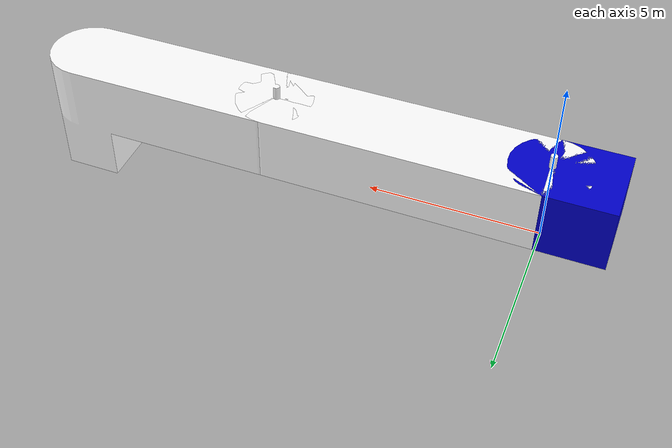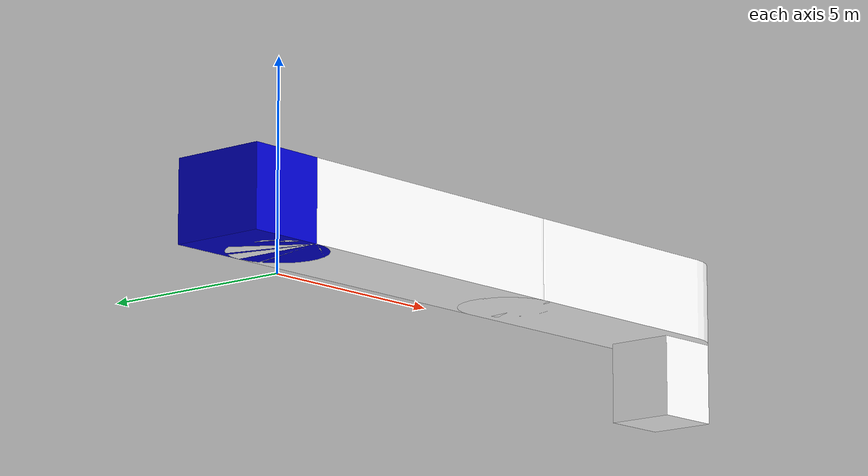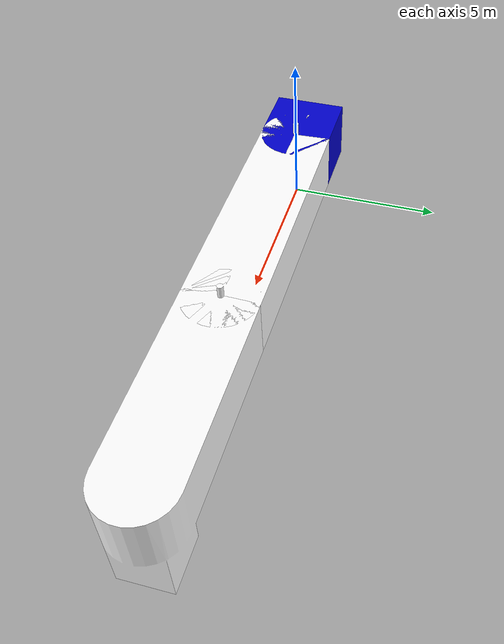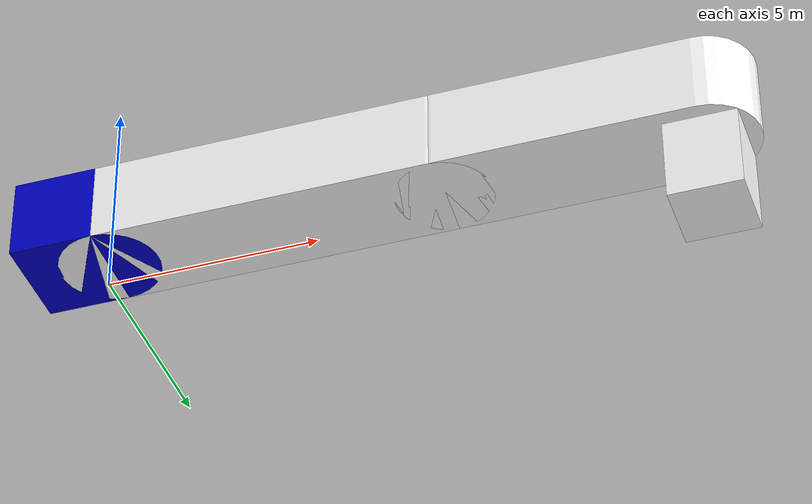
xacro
<?xml version="1.0"?>
<robot name ="scara1">

    <material name="white">
        <color rgba="1 1 1 1"/>
    </material>
    <material name="blue">
        <color rgba="0 0 .8 1"/>
    </material>
    <material name="red">
        <color rgba="1 0 0 1"/>
    </material>

    <link name = "world"></link>

    <link name="base_link">
        <visual>
            <geometry>
                <mesh filename="file:///home/viktor/catkin_ws/src/scara_urdf_testing/urdf/testSCARA/1zlta_kokotina.stl"></mesh>
            </geometry>
            <origin xyz="0 0 0"/>
            <material name="blue"/>
        </visual>
    </link>
    <joint name="baseLink_to_world" type="fixed">
        <parent link="world"/>
        <child link="base_link"/>
        <origin rpy="1.57 0 0" xyz="0 0 0.5"/>
        <axis xyz = "1 0 0"></axis>
    </joint>

    <link name ="robot_link1">
        <visual>
            <geometry>
                <mesh filename="file:///home/viktor/catkin_ws/src/scara_urdf_testing/urdf/testSCARA/1zelena_kokotina.stl"></mesh>
            </geometry>
            <origin rpy="0 0 0" xyz="0 0 0"/>
            <material name="white"/>
        </visual>
    </link>

    <joint name="robotLink1_to_robotBaseLink" type="continuous">
        <parent link="base_link"/>
        <child link="robot_link1"/>
        <origin xyz="0 0 0"/>
        <axis xyz = "0 1 0"></axis>
    </joint>

    <link name ="robot_link2">
        <visual>
            <geometry>
                <mesh filename="file:///home/viktor/catkin_ws/src/scara_urdf_testing/urdf/testSCARA/1cervena_kokotina.stl"></mesh>
            </geometry>
            <origin rpy="0 0 0" xyz="0 0 0"/>
            <material name="white"/>
        </visual>
    </link>
    <joint name="robotLink2_to_robotLink1" type="continuous">
        <parent link="robot_link1"/>
        <child link="robot_link2"/>
        <origin xyz="8 0 0"/>
        <axis xyz = "0 1 0"></axis>
    </joint>

</robot>
